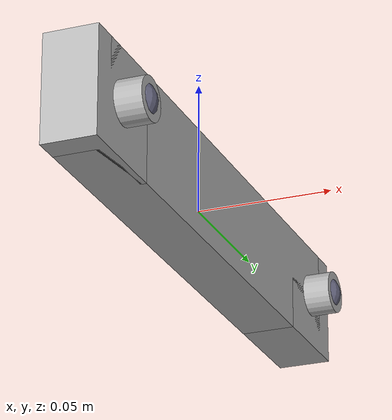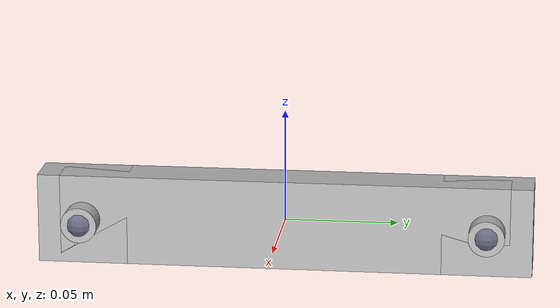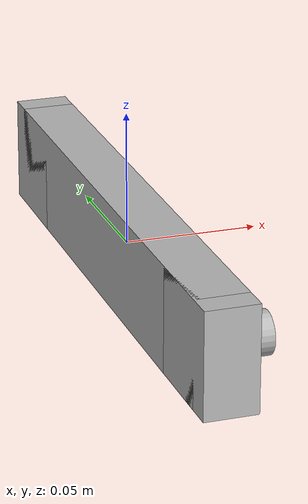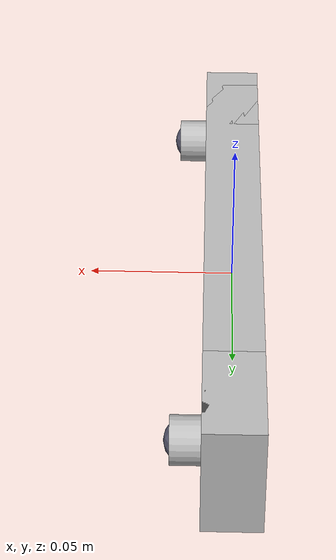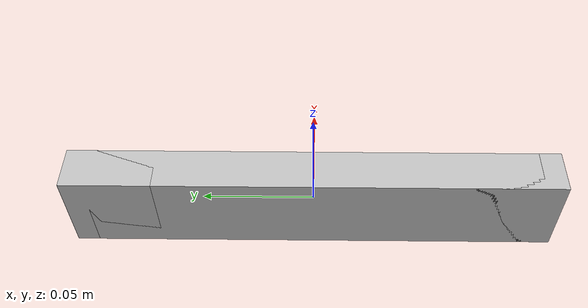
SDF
<?xml version="1.0" encoding="UTF-8"?>
<sdf version='1.9'>
  <model name='stereo_camera'>
    <pose>0 0 0 0 0 0</pose>
    <self_collide>false</self_collide>
    <static>false</static>
    <link name="stereo_camera_link">
      <inertial>
        <pose>0 0 0 0 0 0</pose>
        <mass>0.01</mass>
        <inertia>
          <ixx>0.00006</ixx>
          <ixy>0</ixy>
          <ixz>0</ixz>
          <iyy>0.00006</iyy>
          <iyz>0</iyz>
          <izz>0.00006</izz>
        </inertia>
      </inertial>
      <visual name="stereo_camera/visual/housing">
        <geometry>
          <box>
            <size>0.02 0.2 0.04</size>
          </box>
        </geometry>
      </visual>
    </link>

    <link name="left_camera_link">
      <pose relative_to="stereo_camera_link">0 0.09 0 0 0 0</pose>
      <inertial>
        <pose>0 0 0 0 0 0</pose>
        <mass>0.01</mass>
        <inertia>
          <ixx>0.00004</ixx>
          <ixy>0</ixy>
          <ixz>0</ixz>
          <iyy>0.00004</iyy>
          <iyz>0</iyz>
          <izz>0.00004</izz>
        </inertia>
      </inertial>
      <visual name="left_camera/visual/housing">
        <geometry>
          <box>
            <size>0.02 0.04 0.04</size>
          </box>
        </geometry>
      </visual>
      <visual name="left_camera/visual/lens">
        <pose>0.015 0 0 0 1.5707 0</pose>
        <geometry>
          <cylinder>
            <radius>0.008</radius>
            <length>0.01</length>
          </cylinder>
        </geometry>
      </visual>
      <visual name="left_camera/visual/lens_glass">
        <pose>0.014 0 0 0 0 0</pose>
        <geometry>
          <sphere>
            <radius>0.0079</radius>
          </sphere>
        </geometry>
        <material>
          <ambient>.4 .4 .5 .95</ambient>
          <diffuse>.4 .4 .5 .95</diffuse>
          <specular>1 1 1 1</specular>
          <emissive>0 0 0 1</emissive>
        </material>
      </visual>
      <sensor name="left_camera_sensor" type="camera">
        <pose>0 0 0 0 0 0</pose>
        <always_on>1</always_on>
        <update_rate>30</update_rate>
        <visualize>true</visualize>
        <frame_name>left_camera_optical_link</frame_name>
        <camera>
          <horizontal_fov>1.74</horizontal_fov>
          <image>
            <width>752</width>
            <height>480</height>
          </image>
          <clip>
            <near>0.1</near>
            <far>3000</far>
          </clip>
          <distortion>
            <k1>-0.25</k1>
            <k2>0.12</k2>
            <k3>0.0</k3>
            <p1>-0.00028</p1>
            <p2>0.00005</p2>
            <center>0.5 0.5</center>
          </distortion>
        </camera>
      </sensor>
      <gravity>true</gravity>
      <velocity_decay/>
    </link>
    <link name="left_camera_optical_link">
      <pose relative_to="left_camera_link">0 0 0 -1.5707963267948966 0 -1.5707963267948966</pose>
      <inertial>
        <mass>0.001</mass>
        <inertia>
          <ixx>0.00000001</ixx>
          <iyy>0.00000001</iyy>
          <izz>0.00000001</izz>
        </inertia>
      </inertial>
    </link>
    <joint name="left_camera_optical_joint" type="fixed">
      <parent>left_camera_link</parent>
      <child>left_camera_optical_link</child>
    </joint>

    <link name="right_camera_link">
      <pose relative_to="stereo_camera_link">0 -0.09 0 0 0 0</pose>
      <inertial>
        <pose>0 0 0 0 0 0</pose>
        <mass>0.01</mass>
        <inertia>
          <ixx>0.00004</ixx>
          <ixy>0</ixy>
          <ixz>0</ixz>
          <iyy>0.00004</iyy>
          <iyz>0</iyz>
          <izz>0.00004</izz>
        </inertia>
      </inertial>
      <visual name="right_camera/visual/housing">
        <geometry>
          <box>
            <size>0.02 0.04 0.04</size>
          </box>
        </geometry>
      </visual>
      <visual name="right_camera/visual/lens">
        <pose>0.015 0 0 0 1.5707 0</pose>
        <geometry>
          <cylinder>
            <radius>0.008</radius>
            <length>0.01</length>
          </cylinder>
        </geometry>
      </visual>
      <visual name="right_camera/visual/lens_glass">
        <pose>0.014 0 0 0 0 0</pose>
        <geometry>
          <sphere>
            <radius>0.0079</radius>
          </sphere>
        </geometry>
        <material>
          <ambient>.4 .4 .5 .95</ambient>
          <diffuse>.4 .4 .5 .95</diffuse>
          <specular>1 1 1 1</specular>
          <emissive>0 0 0 1</emissive>
        </material>
      </visual>
      <sensor name="right_camera_sensor" type="camera">
        <pose>0 0 0 0 0 0</pose>
        <always_on>1</always_on>
        <update_rate>30</update_rate>
        <visualize>true</visualize>
        <frame_name>right_camera_optical_link</frame_name>
        <camera>
          <horizontal_fov>1.74</horizontal_fov>
          <image>
            <width>752</width>
            <height>480</height>
          </image>
          <clip>
            <near>0.1</near>
            <far>3000</far>
          </clip>
          <distortion>
            <k1>-0.25</k1>
            <k2>0.12</k2>
            <k3>0.0</k3>
            <p1>-0.00028</p1>
            <p2>0.00005</p2>
            <center>0.5 0.5</center>
          </distortion>
        </camera>

      </sensor>
      <gravity>true</gravity>
      <velocity_decay/>
    </link>
    <link name="right_camera_optical_link">
      <pose relative_to="right_camera_link">0 0 0 -1.5707963267948966 0 -1.5707963267948966</pose>
      <inertial>
        <mass>0.001</mass>
        <inertia>
          <ixx>0.00000001</ixx>
          <iyy>0.00000001</iyy>
          <izz>0.00000001</izz>
        </inertia>
      </inertial>
    </link>
    <joint name="right_camera_optical_joint" type="fixed">
      <parent>right_camera_link</parent>
      <child>right_camera_optical_link</child>
    </joint>

    <joint name="left_camera_joint" type="fixed">
      <parent>stereo_camera_link</parent>
      <child>left_camera_link</child>
    </joint>

    <joint name="right_camera_joint" type="fixed">
      <parent>stereo_camera_link</parent>
      <child>right_camera_link</child>
    </joint>
  </model>
</sdf>
